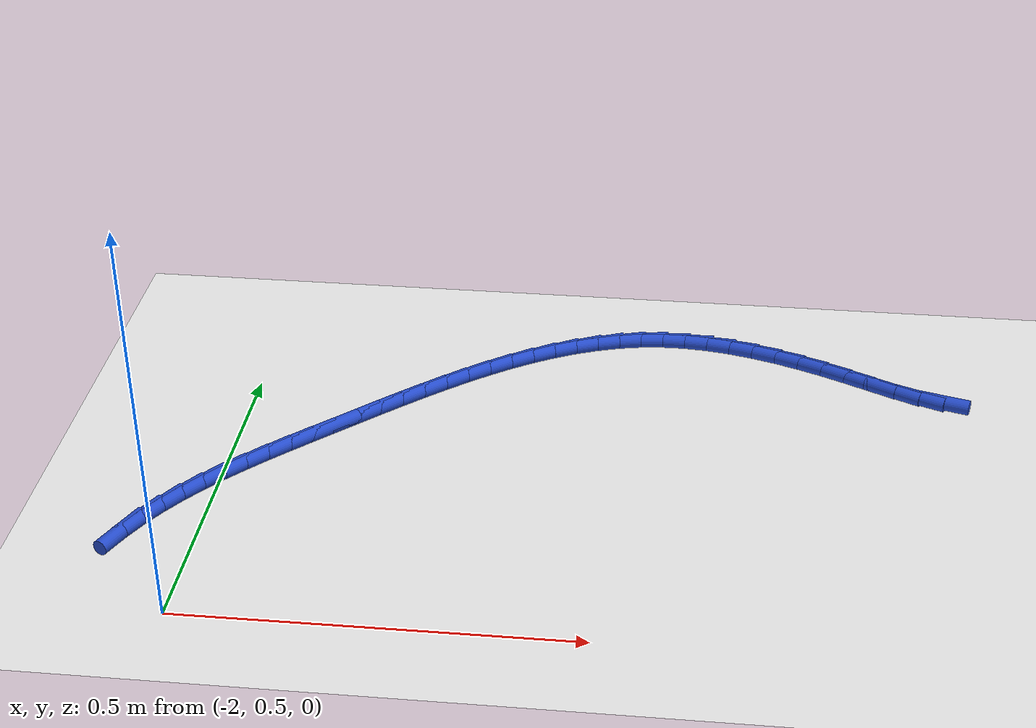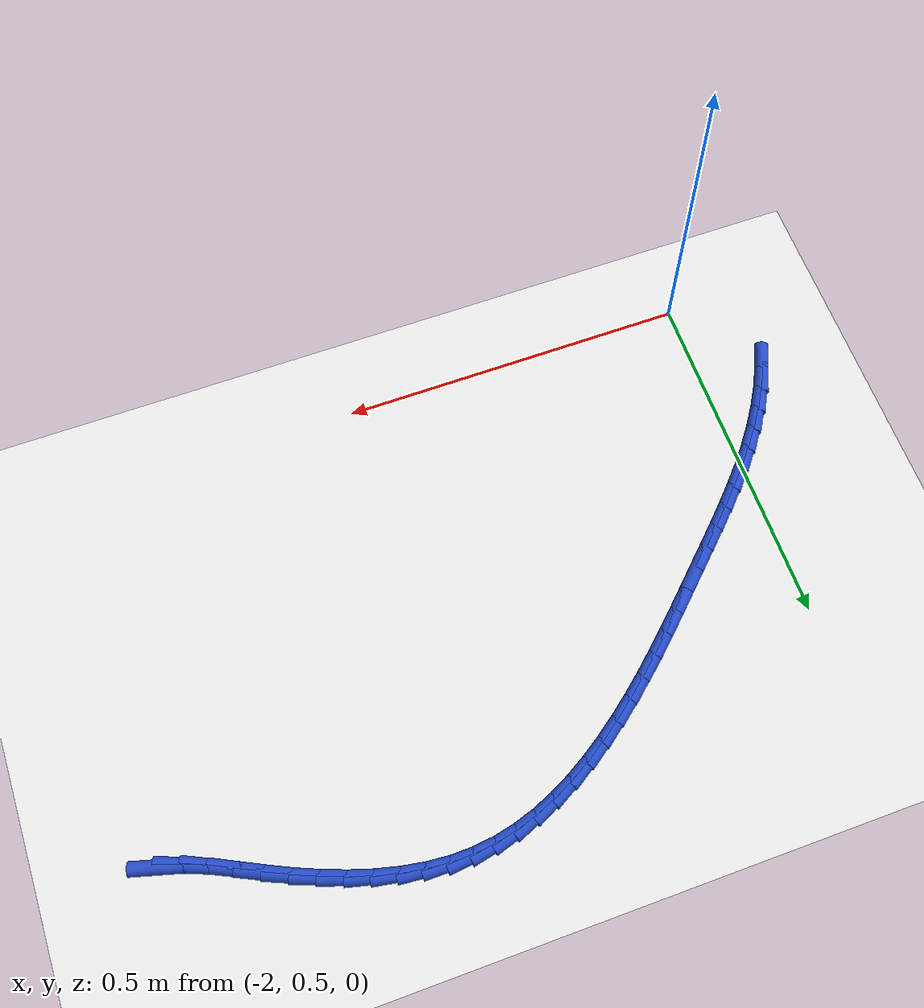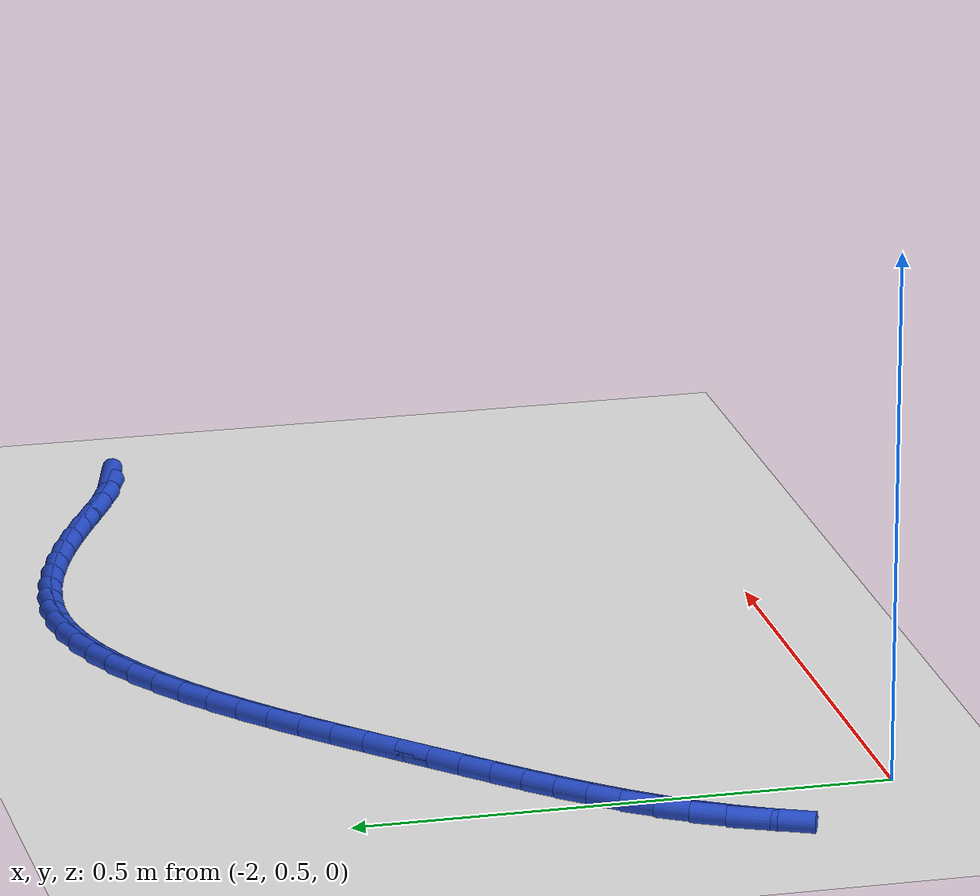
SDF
<sdf version="1.6">
 <world name="default">
  <model name="ground_plane">
   <static>1</static>
   <link name="link">
    <collision name="collision">
     <geometry><plane><normal>0 0 1</normal><size>100 100</size></plane></geometry>
     <surface><friction><ode><mu>100</mu><mu2>50</mu2></ode></friction></surface>
    </collision>
    <visual name="visual">
     <cast_shadows>0</cast_shadows>
     <geometry><plane><normal>0 0 1</normal><size>100 100</size></plane></geometry>
     <material>
      <script><uri>file://media/materials/scripts/gazebo.material</uri><name>Gazebo/WhiteGlow</name></script>
     </material>
    </visual>
   </link>
  </model>
  <model name="line">
   <link name="link_54">
    <pose>-1.076238483475714 1.0385739276852177 0.01 0 1.57 -0.2726589383385615</pose>
    <collision name="collision">
     <geometry><cylinder><radius>0.01</radius><length>0.08</length></cylinder></geometry>
    </collision>
    <visual name="visual">
     <material>
      <script><name>Gazebo/Blue</name><uri>file://media/materials/scripts/gazebo.material</uri></script>
     </material>
     <geometry><cylinder><radius>0.01</radius><length>0.08</length></cylinder></geometry>
    </visual>
   </link>
   <link name="link_55">
    <pose>-1.1069089704277046 1.0471500966765146 0.01 0 1.57 -0.3864689399810695</pose>
    <collision name="collision">
     <geometry><cylinder><radius>0.01</radius><length>0.08</length></cylinder></geometry>
    </collision>
    <visual name="visual">
     <material>
      <script><name>Gazebo/Blue</name><uri>file://media/materials/scripts/gazebo.material</uri></script>
     </material>
     <geometry><cylinder><radius>0.01</radius><length>0.08</length></cylinder></geometry>
    </visual>
   </link>
   <link name="link_56">
    <pose>-1.1378281134096322 1.0597321221908444 0.01 0 1.57 -0.4480499489922257</pose>
    <collision name="collision">
     <geometry><cylinder><radius>0.01</radius><length>0.08</length></cylinder></geometry>
    </collision>
    <visual name="visual">
     <material>
      <script><name>Gazebo/Blue</name><uri>file://media/materials/scripts/gazebo.material</uri></script>
     </material>
     <geometry><cylinder><radius>0.01</radius><length>0.08</length></cylinder></geometry>
    </visual>
   </link>
   <link name="link_57">
    <pose>-1.1690392267121268 1.0747338138933213 0.01 0 1.57 -0.46521786484681343</pose>
    <collision name="collision">
     <geometry><cylinder><radius>0.01</radius><length>0.08</length></cylinder></geometry>
    </collision>
    <visual name="visual">
     <material>
      <script><name>Gazebo/Blue</name><uri>file://media/materials/scripts/gazebo.material</uri></script>
     </material>
     <geometry><cylinder><radius>0.01</radius><length>0.08</length></cylinder></geometry>
    </visual>
   </link>
   <link name="link_58">
    <pose>-1.2005856246258162 1.090568981449056 0.01 0 1.57 -0.44412983115732446</pose>
    <collision name="collision">
     <geometry><cylinder><radius>0.01</radius><length>0.08</length></cylinder></geometry>
    </collision>
    <visual name="visual">
     <material>
      <script><name>Gazebo/Blue</name><uri>file://media/materials/scripts/gazebo.material</uri></script>
     </material>
     <geometry><cylinder><radius>0.01</radius><length>0.08</length></cylinder></geometry>
    </visual>
   </link>
   <link name="link_59">
    <pose>-1.2324981842894882 1.1057541111132307 0.01 0 1.57 -0.40635541657158475</pose>
    <collision name="collision">
     <geometry><cylinder><radius>0.01</radius><length>0.08</length></cylinder></geometry>
    </collision>
    <visual name="visual">
     <material>
      <script><name>Gazebo/Blue</name><uri>file://media/materials/scripts/gazebo.material</uri></script>
     </material>
     <geometry><cylinder><radius>0.01</radius><length>0.08</length></cylinder></geometry>
    </visual>
   </link>
   <link name="link_60">
    <pose>-1.2647097620148748 1.119614913343265 0.01 0 1.57 -0.3613849267755436</pose>
    <collision name="collision">
     <geometry><cylinder><radius>0.01</radius><length>0.08</length></cylinder></geometry>
    </collision>
    <visual name="visual">
     <material>
      <script><name>Gazebo/Blue</name><uri>file://media/materials/scripts/gazebo.material</uri></script>
     </material>
     <geometry><cylinder><radius>0.01</radius><length>0.08</length></cylinder></geometry>
    </visual>
   </link>
   <link name="link_61">
    <pose>-1.2971067739045594 1.1318604920276625 0.01 0 1.57 -0.30835606208274874</pose>
    <collision name="collision">
     <geometry><cylinder><radius>0.01</radius><length>0.08</length></cylinder></geometry>
    </collision>
    <visual name="visual">
     <material>
      <script><name>Gazebo/Blue</name><uri>file://media/materials/scripts/gazebo.material</uri></script>
     </material>
     <geometry><cylinder><radius>0.01</radius><length>0.08</length></cylinder></geometry>
    </visual>
   </link>
   <link name="link_62">
    <pose>-1.3295753575808298 1.142202250086674 0.01 0 1.57 -0.24621959633397472</pose>
    <collision name="collision">
     <geometry><cylinder><radius>0.01</radius><length>0.08</length></cylinder></geometry>
    </collision>
    <visual name="visual">
     <material>
      <script><name>Gazebo/Blue</name><uri>file://media/materials/scripts/gazebo.material</uri></script>
     </material>
     <geometry><cylinder><radius>0.01</radius><length>0.08</length></cylinder></geometry>
    </visual>
   </link>
   <link name="link_63">
    <pose>-1.3620016506659742 1.1503515904405508 0.01 0 1.57 -0.17387855035536814</pose>
    <collision name="collision">
     <geometry><cylinder><radius>0.01</radius><length>0.08</length></cylinder></geometry>
    </collision>
    <visual name="visual">
     <material>
      <script><name>Gazebo/Blue</name><uri>file://media/materials/scripts/gazebo.material</uri></script>
     </material>
     <geometry><cylinder><radius>0.01</radius><length>0.08</length></cylinder></geometry>
    </visual>
   </link>
   <link name="link_64">
    <pose>-1.3942717907822815 1.1560199160095441 0.01 0 1.57 -0.09033789793591095</pose>
    <collision name="collision">
     <geometry><cylinder><radius>0.01</radius><length>0.08</length></cylinder></geometry>
    </collision>
    <visual name="visual">
     <material>
      <script><name>Gazebo/Blue</name><uri>file://media/materials/scripts/gazebo.material</uri></script>
     </material>
     <geometry><cylinder><radius>0.01</radius><length>0.08</length></cylinder></geometry>
    </visual>
   </link>
   <link name="link_65">
    <pose>-1.4262719155520402 1.1589186297139054 0.01 0 1.57 0.005044681198250452</pose>
    <collision name="collision">
     <geometry><cylinder><radius>0.01</radius><length>0.08</length></cylinder></geometry>
    </collision>
    <visual name="visual">
     <material>
      <script><name>Gazebo/Blue</name><uri>file://media/materials/scripts/gazebo.material</uri></script>
     </material>
     <geometry><cylinder><radius>0.01</radius><length>0.08</length></cylinder></geometry>
    </visual>
   </link>
   <link name="link_66">
    <pose>-1.4578881625975397 1.1587591344738855 0.01 0 1.57 0.10991743101642538</pose>
    <collision name="collision">
     <geometry><cylinder><radius>0.01</radius><length>0.08</length></cylinder></geometry>
    </collision>
    <visual name="visual">
     <material>
      <script><name>Gazebo/Blue</name><uri>file://media/materials/scripts/gazebo.material</uri></script>
     </material>
     <geometry><cylinder><radius>0.01</radius><length>0.08</length></cylinder></geometry>
    </visual>
   </link>
   <link name="link_67">
    <pose>-1.4890230127385096 1.1553230223850424 0.01 0 1.57 0.21133307052214542</pose>
    <collision name="collision">
     <geometry><cylinder><radius>0.01</radius><length>0.08</length></cylinder></geometry>
    </collision>
    <visual name="visual">
     <material>
      <script><name>Gazebo/Blue</name><uri>file://media/materials/scripts/gazebo.material</uri></script>
     </material>
     <geometry><cylinder><radius>0.01</radius><length>0.08</length></cylinder></geometry>
    </visual>
   </link>
   <link name="link_68">
    <pose>-1.5196622811457638 1.1487497818112464 0.01 0 1.57 0.30389209584032767</pose>
    <collision name="collision">
     <geometry><cylinder><radius>0.01</radius><length>0.08</length></cylinder></geometry>
    </collision>
    <visual name="visual">
     <material>
      <script><name>Gazebo/Blue</name><uri>file://media/materials/scripts/gazebo.material</uri></script>
     </material>
     <geometry><cylinder><radius>0.01</radius><length>0.08</length></cylinder></geometry>
    </visual>
   </link>
   <link name="link_69">
    <pose>-1.5498182764425432 1.1392926826198766 0.01 0 1.57 0.3866946898808996</pose>
    <collision name="collision">
     <geometry><cylinder><radius>0.01</radius><length>0.08</length></cylinder></geometry>
    </collision>
    <visual name="visual">
     <material>
      <script><name>Gazebo/Blue</name><uri>file://media/materials/scripts/gazebo.material</uri></script>
     </material>
     <geometry><cylinder><radius>0.01</radius><length>0.08</length></cylinder></geometry>
    </visual>
   </link>
   <link name="link_70">
    <pose>-1.5795033182702796 1.1272050419981534 0.01 0 1.57 0.4595789574771931</pose>
    <collision name="collision">
     <geometry><cylinder><radius>0.01</radius><length>0.08</length></cylinder></geometry>
    </collision>
    <visual name="visual">
     <material>
      <script><name>Gazebo/Blue</name><uri>file://media/materials/scripts/gazebo.material</uri></script>
     </material>
     <geometry><cylinder><radius>0.01</radius><length>0.08</length></cylinder></geometry>
    </visual>
   </link>
   <link name="link_71">
    <pose>-1.6087297262704041 1.1127401771332988 0.01 0 1.57 0.5228838464333658</pose>
    <collision name="collision">
     <geometry><cylinder><radius>0.01</radius><length>0.08</length></cylinder></geometry>
    </collision>
    <visual name="visual">
     <material>
      <script><name>Gazebo/Blue</name><uri>file://media/materials/scripts/gazebo.material</uri></script>
     </material>
     <geometry><cylinder><radius>0.01</radius><length>0.08</length></cylinder></geometry>
    </visual>
   </link>
   <link name="link_72">
    <pose>-1.6375098200843476 1.0961514052125327 0.01 0 1.57 0.5772278051789631</pose>
    <collision name="collision">
     <geometry><cylinder><radius>0.01</radius><length>0.08</length></cylinder></geometry>
    </collision>
    <visual name="visual">
     <material>
      <script><name>Gazebo/Blue</name><uri>file://media/materials/scripts/gazebo.material</uri></script>
     </material>
     <geometry><cylinder><radius>0.01</radius><length>0.08</length></cylinder></geometry>
    </visual>
   </link>
   <link name="link_73">
    <pose>-1.6658559193535403 1.0776920434230772 0.01 0 1.57 0.6233399161092285</pose>
    <collision name="collision">
     <geometry><cylinder><radius>0.01</radius><length>0.08</length></cylinder></geometry>
    </collision>
    <visual name="visual">
     <material>
      <script><name>Gazebo/Blue</name><uri>file://media/materials/scripts/gazebo.material</uri></script>
     </material>
     <geometry><cylinder><radius>0.01</radius><length>0.08</length></cylinder></geometry>
    </visual>
   </link>
   <link name="link_74">
    <pose>-1.6937803437194137 1.0576154089521526 0.01 0 1.57 0.6619478909796318</pose>
    <collision name="collision">
     <geometry><cylinder><radius>0.01</radius><length>0.08</length></cylinder></geometry>
    </collision>
    <visual name="visual">
     <material>
      <script><name>Gazebo/Blue</name><uri>file://media/materials/scripts/gazebo.material</uri></script>
     </material>
     <geometry><cylinder><radius>0.01</radius><length>0.08</length></cylinder></geometry>
    </visual>
   </link>
   <link name="link_75">
    <pose>-1.7212954128233988 1.0361748189869808 0.01 0 1.57 0.6937116544467744</pose>
    <collision name="collision">
     <geometry><cylinder><radius>0.01</radius><length>0.08</length></cylinder></geometry>
    </collision>
    <visual name="visual">
     <material>
      <script><name>Gazebo/Blue</name><uri>file://media/materials/scripts/gazebo.material</uri></script>
     </material>
     <geometry><cylinder><radius>0.01</radius><length>0.08</length></cylinder></geometry>
    </visual>
   </link>
   <link name="link_76">
    <pose>-1.7484134463069263 1.0136235907147826 0.01 0 1.57 0.7191878581240776</pose>
    <collision name="collision">
     <geometry><cylinder><radius>0.01</radius><length>0.08</length></cylinder></geometry>
    </collision>
    <visual name="visual">
     <material>
      <script><name>Gazebo/Blue</name><uri>file://media/materials/scripts/gazebo.material</uri></script>
     </material>
     <geometry><cylinder><radius>0.01</radius><length>0.08</length></cylinder></geometry>
    </visual>
   </link>
   <link name="link_77">
    <pose>-1.7751467638114269 0.9902150413227793 0.01 0 1.57 0.7388127568755634</pose>
    <collision name="collision">
     <geometry><cylinder><radius>0.01</radius><length>0.08</length></cylinder></geometry>
    </collision>
    <visual name="visual">
     <material>
      <script><name>Gazebo/Blue</name><uri>file://media/materials/scripts/gazebo.material</uri></script>
     </material>
     <geometry><cylinder><radius>0.01</radius><length>0.08</length></cylinder></geometry>
    </visual>
   </link>
   <link name="link_78">
    <pose>-1.8015076849783318 0.966202487998191 0.01 0 1.57 0.7528942935353788</pose>
    <collision name="collision">
     <geometry><cylinder><radius>0.01</radius><length>0.08</length></cylinder></geometry>
    </collision>
    <visual name="visual">
     <material>
      <script><name>Gazebo/Blue</name><uri>file://media/materials/scripts/gazebo.material</uri></script>
     </material>
     <geometry><cylinder><radius>0.01</radius><length>0.08</length></cylinder></geometry>
    </visual>
   </link>
   <link name="link_79">
    <pose>-1.8275085294490718 0.9418392479282401 0.01 0 1.57 0.7616072067306237</pose>
    <collision name="collision">
     <geometry><cylinder><radius>0.01</radius><length>0.08</length></cylinder></geometry>
    </collision>
    <visual name="visual">
     <material>
      <script><name>Gazebo/Blue</name><uri>file://media/materials/scripts/gazebo.material</uri></script>
     </material>
     <geometry><cylinder><radius>0.01</radius><length>0.08</length></cylinder></geometry>
    </visual>
   </link>
   <link name="link_80">
    <pose>-1.8531616168650784 0.917378638300147 0.01 0 1.57 0.7649870361466131</pose>
    <collision name="collision">
     <geometry><cylinder><radius>0.01</radius><length>0.08</length></cylinder></geometry>
    </collision>
    <visual name="visual">
     <material>
      <script><name>Gazebo/Blue</name><uri>file://media/materials/scripts/gazebo.material</uri></script>
     </material>
     <geometry><cylinder><radius>0.01</radius><length>0.08</length></cylinder></geometry>
    </visual>
   </link>
   <link name="link_81">
    <pose>-1.8784792668677812 0.8930739763011329 0.01 0 1.57 0.764797828318184</pose>
    <collision name="collision">
     <geometry><cylinder><radius>0.01</radius><length>0.08</length></cylinder></geometry>
    </collision>
    <visual name="visual">
     <material>
      <script><name>Gazebo/Blue</name><uri>file://media/materials/scripts/gazebo.material</uri></script>
     </material>
     <geometry><cylinder><radius>0.01</radius><length>0.08</length></cylinder></geometry>
    </visual>
   </link>
   <link name="link_82">
    <pose>-1.9034504246843378 0.869111020249248 0.01 0 1.57 0.7696742958405746</pose>
    <collision name="collision">
     <geometry><cylinder><radius>0.01</radius><length>0.08</length></cylinder></geometry>
    </collision>
    <visual name="visual">
     <material>
      <script><name>Gazebo/Blue</name><uri>file://media/materials/scripts/gazebo.material</uri></script>
     </material>
     <geometry><cylinder><radius>0.01</radius><length>0.08</length></cylinder></geometry>
    </visual>
   </link>
   <link name="link_83">
    <pose>-1.9279562454174448 0.8453639835899778 0.01 0 1.57 0.7823766001321093</pose>
    <collision name="collision">
     <geometry><cylinder><radius>0.01</radius><length>0.08</length></cylinder></geometry>
    </collision>
    <visual name="visual">
     <material>
      <script><name>Gazebo/Blue</name><uri>file://media/materials/scripts/gazebo.material</uri></script>
     </material>
     <geometry><cylinder><radius>0.01</radius><length>0.08</length></cylinder></geometry>
    </visual>
   </link>
   <link name="link_84">
    <pose>-1.9518468336509018 0.8216173347202622 0.01 0 1.57 0.8031578638252724</pose>
    <collision name="collision">
     <geometry><cylinder><radius>0.01</radius><length>0.08</length></cylinder></geometry>
    </collision>
    <visual name="visual">
     <material>
      <script><name>Gazebo/Blue</name><uri>file://media/materials/scripts/gazebo.material</uri></script>
     </material>
     <geometry><cylinder><radius>0.01</radius><length>0.08</length></cylinder></geometry>
    </visual>
   </link>
   <link name="link_85">
    <pose>-1.974972291097411 0.7976555337387308 0.01 0 1.57 0.8321864770874734</pose>
    <collision name="collision">
     <geometry><cylinder><radius>0.01</radius><length>0.08</length></cylinder></geometry>
    </collision>
    <visual name="visual">
     <material>
      <script><name>Gazebo/Blue</name><uri>file://media/materials/scripts/gazebo.material</uri></script>
     </material>
     <geometry><cylinder><radius>0.01</radius><length>0.08</length></cylinder></geometry>
    </visual>
   </link>
   <link name="link_86">
    <pose>-1.9971827194696754 0.7732630407440149 0.01 0 1.57 0.8694970317864423</pose>
    <collision name="collision">
     <geometry><cylinder><radius>0.01</radius><length>0.08</length></cylinder></geometry>
    </collision>
    <visual name="visual">
     <material>
      <script><name>Gazebo/Blue</name><uri>file://media/materials/scripts/gazebo.material</uri></script>
     </material>
     <geometry><cylinder><radius>0.01</radius><length>0.08</length></cylinder></geometry>
    </visual>
   </link>
   <link name="link_87">
    <pose>-2.0183282204803983 0.7482243158347444 0.01 0 1.57 0.9149256816366125</pose>
    <collision name="collision">
     <geometry><cylinder><radius>0.01</radius><length>0.08</length></cylinder></geometry>
    </collision>
    <visual name="visual">
     <material>
      <script><name>Gazebo/Blue</name><uri>file://media/materials/scripts/gazebo.material</uri></script>
     </material>
     <geometry><cylinder><radius>0.01</radius><length>0.08</length></cylinder></geometry>
    </visual>
   </link>
   <link name="link_88">
    <pose>-2.0382588958422803 0.7223238191095496 0.01 0 1.57 0.9680382402038945</pose>
    <collision name="collision">
     <geometry><cylinder><radius>0.01</radius><length>0.08</length></cylinder></geometry>
    </collision>
    <visual name="visual">
     <material>
      <script><name>Gazebo/Blue</name><uri>file://media/materials/scripts/gazebo.material</uri></script>
     </material>
     <geometry><cylinder><radius>0.01</radius><length>0.08</length></cylinder></geometry>
    </visual>
   </link>
   <link name="link_89">
    <pose>-2.0568248472680253 0.695346010667061 0.01 0 1.57 1.0280625030085169</pose>
    <collision name="collision">
     <geometry><cylinder><radius>0.01</radius><length>0.08</length></cylinder></geometry>
    </collision>
    <visual name="visual">
     <material>
      <script><name>Gazebo/Blue</name><uri>file://media/materials/scripts/gazebo.material</uri></script>
     </material>
     <geometry><cylinder><radius>0.01</radius><length>0.08</length></cylinder></geometry>
    </visual>
   </link>
   <link name="link_90">
    <pose>-2.073876177714001 0.6670756338138539 0.01 0 1.57 1.0923530774912777</pose>
    <collision name="collision">
     <geometry><cylinder><radius>0.01</radius><length>0.08</length></cylinder></geometry>
    </collision>
    <visual name="visual">
     <material>
      <script><name>Gazebo/Blue</name><uri>file://media/materials/scripts/gazebo.material</uri></script>
     </material>
     <geometry><cylinder><radius>0.01</radius><length>0.08</length></cylinder></geometry>
    </visual>
   </link>
   <link name="link_91">
    <pose>-2.089263470125698 0.6374067352211935 0.01 0 1.57 1.1568482342730044</pose>
    <collision name="collision">
     <geometry><cylinder><radius>0.01</radius><length>0.08</length></cylinder></geometry>
    </collision>
    <visual name="visual">
     <material>
      <script><name>Gazebo/Blue</name><uri>file://media/materials/scripts/gazebo.material</uri></script>
     </material>
     <geometry><cylinder><radius>0.01</radius><length>0.08</length></cylinder></geometry>
    </visual>
   </link>
  </model>
 </world>
</sdf>
